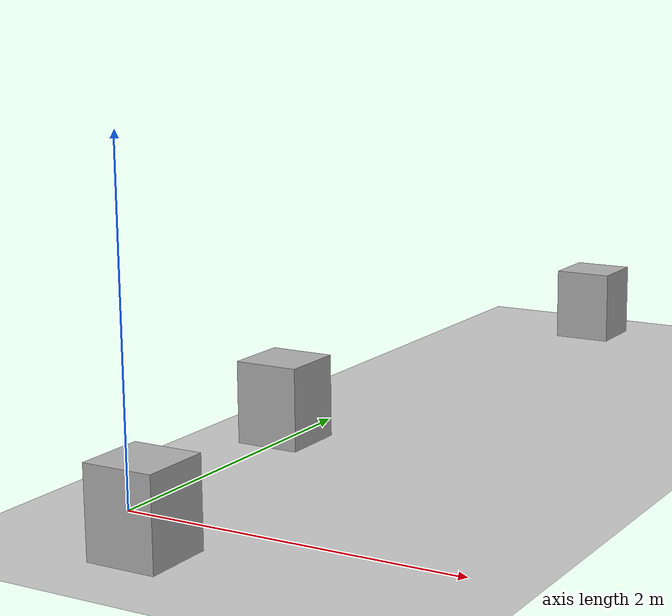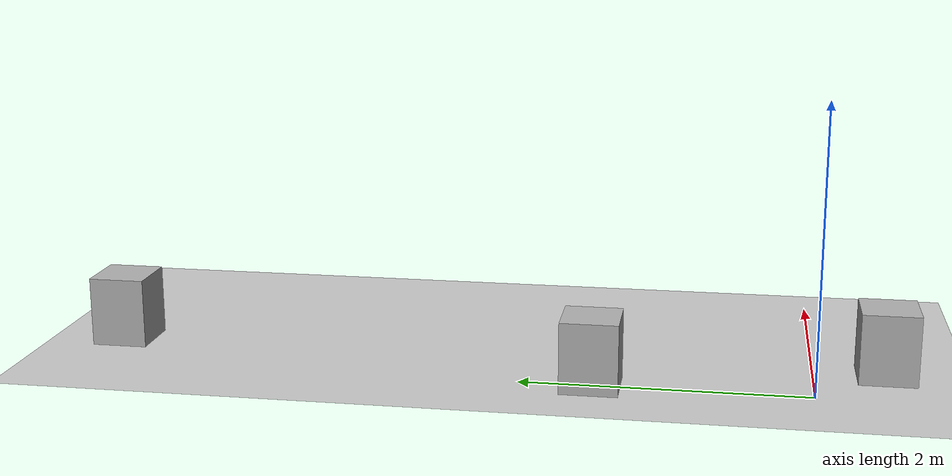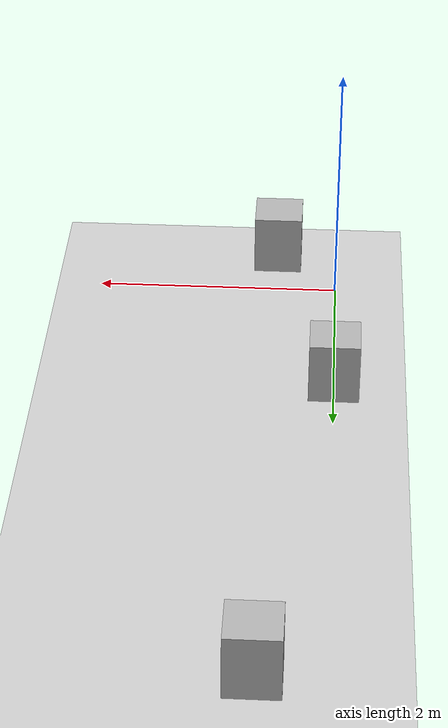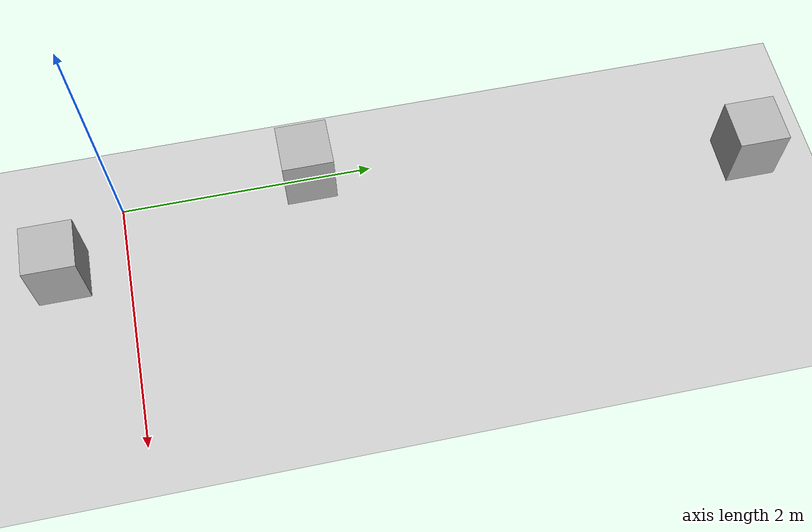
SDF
<sdf version="1.7">
 <world name="default">
  <model name="ground_plane">
   <static>1</static>
   <link name="link">
    <collision name="collision">
     <geometry><plane><normal>0 0 1</normal><size>100 100</size></plane></geometry>
     <surface><friction><ode><mu>100</mu><mu2>50</mu2></ode></friction></surface>
    </collision>
    <visual name="visual">
     <cast_shadows>0</cast_shadows>
     <geometry><plane><normal>0 0 1</normal><size>100 100</size></plane></geometry>
     <material>
      <script><uri>file://media/materials/scripts/gazebo.material</uri><name>Gazebo/Grey</name></script>
     </material>
    </visual>
   </link>
  </model>
  <model name="obstacle_cube_1">
   <static>true</static>
   <pose>0.5 -0.5 0.25 0 0 0</pose>
   <link name="link">
    <visual name="visual">
     <geometry><box><size>0.4 0.4 0.5</size></box></geometry>
     <material>
      <ambient>0.7 0.7 0.7 1</ambient>
      <diffuse>0.7 0.7 0.7 1</diffuse>
      <specular>0.1 0.1 0.1 1</specular>
      <emissive>0 0 0 1</emissive>
     </material>
    </visual>
    <collision name="collision"><geometry><box><size>0.4 0.4 0.5</size></box></geometry></collision>
   </link>
  </model>
  <model name="obstacle_cube_2">
   <static>true</static>
   <pose>0.0 1.5 0.25 0 0 0</pose>
   <link name="link">
    <visual name="visual">
     <geometry><box><size>0.4 0.4 0.5</size></box></geometry>
     <material>
      <ambient>0.7 0.7 0.7 1</ambient>
      <diffuse>0.7 0.7 0.7 1</diffuse>
      <specular>0.1 0.1 0.1 1</specular>
      <emissive>0 0 0 1</emissive>
     </material>
    </visual>
    <collision name="collision"><geometry><box><size>0.4 0.4 0.5</size></box></geometry></collision>
   </link>
  </model>
  <model name="obstacle_cube_3">
   <static>true</static>
   <pose>0.5 5.0 0.25 0 0 0</pose>
   <link name="link">
    <visual name="visual">
     <geometry><box><size>0.4 0.4 0.5</size></box></geometry>
     <material>
      <ambient>0.7 0.7 0.7 1</ambient>
      <diffuse>0.7 0.7 0.7 1</diffuse>
      <specular>0.1 0.1 0.1 1</specular>
      <emissive>0 0 0 1</emissive>
     </material>
    </visual>
    <collision name="collision"><geometry><box><size>0.4 0.4 0.5</size></box></geometry></collision>
   </link>
  </model>
 </world>
</sdf>
